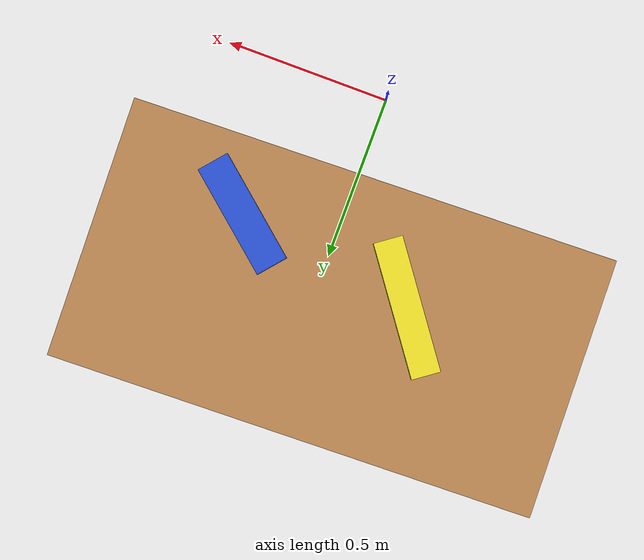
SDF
<sdf version="1.7">
 <world name="default">
  <light name="sun" type="directional">
   <pose>0 0 10 0 -0 0</pose>
   <diffuse>0.8 0.8 0.8 1</diffuse>
   <specular>0.2 0.2 0.2 1</specular>
   <attenuation>
    <range>1000</range>
    <constant>0.9</constant>
    <linear>0.01</linear>
    <quadratic>0.001</quadratic>
   </attenuation>
   <direction>-0.5 0.1 -0.9</direction>
   <spot><inner_angle>0</inner_angle><outer_angle>0</outer_angle><falloff>0</falloff></spot>
  </light>
  <light name="sun_1" type="directional">
   <pose>0 0 10 0 -0 0</pose>
   <diffuse>0.8 0.8 0.8 1</diffuse>
   <specular>0.2 0.2 0.2 1</specular>
   <attenuation>
    <range>1000</range>
    <constant>0.9</constant>
    <linear>0.01</linear>
    <quadratic>0.001</quadratic>
   </attenuation>
   <direction>-0.5 0.1 -0.9</direction>
   <spot><inner_angle>0</inner_angle><outer_angle>0</outer_angle><falloff>0</falloff></spot>
  </light>
  <light name="sun_2" type="directional">
   <pose>0 0 10 0 -0 0</pose>
   <diffuse>0.8 0.8 0.8 1</diffuse>
   <specular>0.2 0.2 0.2 1</specular>
   <attenuation>
    <range>1000</range>
    <constant>0.9</constant>
    <linear>0.01</linear>
    <quadratic>0.001</quadratic>
   </attenuation>
   <direction>-0.5 0.1 -0.9</direction>
   <spot><inner_angle>0</inner_angle><outer_angle>0</outer_angle><falloff>0</falloff></spot>
  </light>
  <model name="ground_plane">
   <static>1</static>
   <link name="link">
    <collision name="collision">
     <geometry><plane><normal>0 0 1</normal><size>100 100</size></plane></geometry>
     <surface>
      <contact><collide_bitmask>65535</collide_bitmask></contact>
      <friction><ode><mu>100</mu><mu2>50</mu2></ode></friction>
     </surface>
    </collision>
    <visual name="visual">
     <cast_shadows>0</cast_shadows>
     <geometry><plane><normal>0 0 1</normal><size>100 100</size></plane></geometry>
     <material>
      <script><uri>file://media/materials/scripts/gazebo.material</uri><name>Gazebo/Grey</name></script>
     </material>
    </visual>
   </link>
  </model>
  <gravity>0 0 -9.8</gravity>
  <magnetic_field>6e-06 2.3e-05 -4.2e-05</magnetic_field>
  <atmosphere type="adiabatic"/>
  <physics type="ode">
   <max_step_size>0.001</max_step_size>
   <real_time_factor>1</real_time_factor>
   <real_time_update_rate>1000</real_time_update_rate>
  </physics>
  <scene><ambient>0.4 0.4 0.4 1</ambient><background>0.7 0.7 0.7 1</background><shadows>1</shadows></scene>
  <spherical_coordinates>
   <surface_model>EARTH_WGS84</surface_model>
   <latitude_deg>0</latitude_deg>
   <longitude_deg>0</longitude_deg>
   <elevation>0</elevation>
   <heading_deg>0</heading_deg>
  </spherical_coordinates>
  <model name="table">
   <link name="link_3">
    <inertial>
     <mass>1</mass>
     <inertia><ixx>1</ixx><ixy>0</ixy><ixz>0</ixz><iyy>1</iyy><iyz>0</iyz><izz>1</izz></inertia>
    </inertial>
    <visual name="visual1">
     <pose>0 0 0.74 0 -0 0</pose>
     <geometry><box><size>1.5 0.8 0.03</size></box></geometry>
     <material>
      <script><uri>file://media/materials/scripts/gazebo.material</uri><name>Gazebo/Wood</name></script>
      <shader type="pixel"><normal_map>__default__</normal_map></shader>
      <ambient>1 1 1 1</ambient>
      <diffuse>1 1 1 1</diffuse>
      <specular>0.2 0.2 0.2 1</specular>
      <emissive>0 0 0 1</emissive>
     </material>
    </visual>
    <visual name="front_right_leg_visual">
     <pose>0.68 -0.38 0.5 0 -0 0</pose>
     <geometry><cylinder><radius>0.02</radius><length>0.5</length></cylinder></geometry>
     <material>
      <script><uri>file://media/materials/scripts/gazebo.material</uri><name>Gazebo/Grey</name></script>
      <shader type="pixel"><normal_map>__default__</normal_map></shader>
      <ambient>0.3 0.3 0.3 1</ambient>
      <diffuse>0.7 0.7 0.7 1</diffuse>
      <specular>0.01 0.01 0.01 1</specular>
      <emissive>0 0 0 1</emissive>
     </material>
    </visual>
    <visual name="back_right_leg_visual">
     <pose>-0.68 -0.38 0.5 0 -0 0</pose>
     <geometry><cylinder><radius>0.02</radius><length>0.5</length></cylinder></geometry>
     <material>
      <script><uri>file://media/materials/scripts/gazebo.material</uri><name>Gazebo/Grey</name></script>
      <shader type="pixel"><normal_map>__default__</normal_map></shader>
      <ambient>0.3 0.3 0.3 1</ambient>
      <diffuse>0.7 0.7 0.7 1</diffuse>
      <specular>0.01 0.01 0.01 1</specular>
      <emissive>0 0 0 1</emissive>
     </material>
    </visual>
    <visual name="back_left_leg_visual">
     <pose>-0.68 0.38 0.5 0 -0 0</pose>
     <geometry><cylinder><radius>0.02</radius><length>0.5</length></cylinder></geometry>
     <material>
      <script><uri>file://media/materials/scripts/gazebo.material</uri><name>Gazebo/Grey</name></script>
      <shader type="pixel"><normal_map>__default__</normal_map></shader>
      <ambient>0.3 0.3 0.3 1</ambient>
      <diffuse>0.7 0.7 0.7 1</diffuse>
      <specular>0.01 0.01 0.01 1</specular>
      <emissive>0 0 0 1</emissive>
     </material>
    </visual>
    <visual name="front_left_leg_visual">
     <pose>0.68 0.38 0.5 0 -0 0</pose>
     <geometry><cylinder><radius>0.02</radius><length>0.5</length></cylinder></geometry>
     <material>
      <script><uri>file://media/materials/scripts/gazebo.material</uri><name>Gazebo/Grey</name></script>
      <shader type="pixel"><normal_map>__default__</normal_map></shader>
      <ambient>0.3 0.3 0.3 1</ambient>
      <diffuse>0.7 0.7 0.7 1</diffuse>
      <specular>0.01 0.01 0.01 1</specular>
      <emissive>0 0 0 1</emissive>
     </material>
    </visual>
    <collision name="surface">
     <pose>0 0 0.74 0 -0 0</pose>
     <geometry><box><size>1.5 0.8 0.03</size></box></geometry>
     <surface>
      <friction>
       <ode><mu>0.6</mu><mu2>0.6</mu2><fdir1>0 0 0</fdir1><slip1>0</slip1><slip2>0</slip2></ode>
       <torsional>
        <coefficient>1</coefficient>
        <patch_radius>0</patch_radius>
        <surface_radius>0</surface_radius>
        <use_patch_radius>1</use_patch_radius>
        <ode><slip>0</slip></ode>
       </torsional>
      </friction>
      <bounce><restitution_coefficient>0</restitution_coefficient><threshold>1e+06</threshold></bounce>
      <contact>
       <collide_without_contact>0</collide_without_contact>
       <collide_without_contact_bitmask>1</collide_without_contact_bitmask>
       <collide_bitmask>1</collide_bitmask>
       <ode>
        <soft_cfm>0</soft_cfm>
        <soft_erp>0.2</soft_erp>
        <kp>1e+13</kp>
        <kd>1</kd>
        <max_vel>0.01</max_vel>
        <min_depth>0</min_depth>
       </ode>
       <bullet>
        <split_impulse>1</split_impulse>
        <split_impulse_penetration_threshold>-0.01</split_impulse_penetration_threshold>
        <soft_cfm>0</soft_cfm>
        <soft_erp>0.2</soft_erp>
        <kp>1e+13</kp>
        <kd>1</kd>
       </bullet>
      </contact>
     </surface>
    </collision>
    <collision name="back_left_leg_collision">
     <pose>-0.68 0.38 0.5 0 -0 0</pose>
     <geometry><cylinder><radius>0.02</radius><length>0.5</length></cylinder></geometry>
     <surface>
      <friction>
       <ode><mu>1</mu><mu2>1</mu2><fdir1>0 0 0</fdir1><slip1>0</slip1><slip2>0</slip2></ode>
       <torsional>
        <coefficient>1</coefficient>
        <patch_radius>0</patch_radius>
        <surface_radius>0</surface_radius>
        <use_patch_radius>1</use_patch_radius>
        <ode><slip>0</slip></ode>
       </torsional>
      </friction>
      <bounce><restitution_coefficient>0</restitution_coefficient><threshold>1e+06</threshold></bounce>
      <contact>
       <collide_without_contact>0</collide_without_contact>
       <collide_without_contact_bitmask>1</collide_without_contact_bitmask>
       <collide_bitmask>1</collide_bitmask>
       <ode>
        <soft_cfm>0</soft_cfm>
        <soft_erp>0.2</soft_erp>
        <kp>1e+13</kp>
        <kd>1</kd>
        <max_vel>0.01</max_vel>
        <min_depth>0</min_depth>
       </ode>
       <bullet>
        <split_impulse>1</split_impulse>
        <split_impulse_penetration_threshold>-0.01</split_impulse_penetration_threshold>
        <soft_cfm>0</soft_cfm>
        <soft_erp>0.2</soft_erp>
        <kp>1e+13</kp>
        <kd>1</kd>
       </bullet>
      </contact>
     </surface>
    </collision>
    <collision name="front_right_leg_collision">
     <pose>0.68 -0.38 0.5 0 -0 0</pose>
     <geometry><cylinder><radius>0.02</radius><length>0.5</length></cylinder></geometry>
     <surface>
      <friction>
       <ode><mu>1</mu><mu2>1</mu2><fdir1>0 0 0</fdir1><slip1>0</slip1><slip2>0</slip2></ode>
       <torsional>
        <coefficient>1</coefficient>
        <patch_radius>0</patch_radius>
        <surface_radius>0</surface_radius>
        <use_patch_radius>1</use_patch_radius>
        <ode><slip>0</slip></ode>
       </torsional>
      </friction>
      <bounce><restitution_coefficient>0</restitution_coefficient><threshold>1e+06</threshold></bounce>
      <contact>
       <collide_without_contact>0</collide_without_contact>
       <collide_without_contact_bitmask>1</collide_without_contact_bitmask>
       <collide_bitmask>1</collide_bitmask>
       <ode>
        <soft_cfm>0</soft_cfm>
        <soft_erp>0.2</soft_erp>
        <kp>1e+13</kp>
        <kd>1</kd>
        <max_vel>0.01</max_vel>
        <min_depth>0</min_depth>
       </ode>
       <bullet>
        <split_impulse>1</split_impulse>
        <split_impulse_penetration_threshold>-0.01</split_impulse_penetration_threshold>
        <soft_cfm>0</soft_cfm>
        <soft_erp>0.2</soft_erp>
        <kp>1e+13</kp>
        <kd>1</kd>
       </bullet>
      </contact>
     </surface>
    </collision>
    <collision name="back_right_leg_collision">
     <pose>-0.68 -0.38 0.5 0 -0 0</pose>
     <geometry><cylinder><radius>0.02</radius><length>0.5</length></cylinder></geometry>
     <surface>
      <friction>
       <ode><mu>1</mu><mu2>1</mu2><fdir1>0 0 0</fdir1><slip1>0</slip1><slip2>0</slip2></ode>
       <torsional>
        <coefficient>1</coefficient>
        <patch_radius>0</patch_radius>
        <surface_radius>0</surface_radius>
        <use_patch_radius>1</use_patch_radius>
        <ode><slip>0</slip></ode>
       </torsional>
      </friction>
      <bounce><restitution_coefficient>0</restitution_coefficient><threshold>1e+06</threshold></bounce>
      <contact>
       <collide_without_contact>0</collide_without_contact>
       <collide_without_contact_bitmask>1</collide_without_contact_bitmask>
       <collide_bitmask>1</collide_bitmask>
       <ode>
        <soft_cfm>0</soft_cfm>
        <soft_erp>0.2</soft_erp>
        <kp>1e+13</kp>
        <kd>1</kd>
        <max_vel>0.01</max_vel>
        <min_depth>0</min_depth>
       </ode>
       <bullet>
        <split_impulse>1</split_impulse>
        <split_impulse_penetration_threshold>-0.01</split_impulse_penetration_threshold>
        <soft_cfm>0</soft_cfm>
        <soft_erp>0.2</soft_erp>
        <kp>1e+13</kp>
        <kd>1</kd>
       </bullet>
      </contact>
     </surface>
    </collision>
    <collision name="front_left_leg_collision">
     <pose>0.68 0.38 0.5 0 -0 0</pose>
     <geometry><cylinder><radius>0.02</radius><length>0.5</length></cylinder></geometry>
     <surface>
      <friction>
       <ode><mu>1</mu><mu2>1</mu2><fdir1>0 0 0</fdir1><slip1>0</slip1><slip2>0</slip2></ode>
       <torsional>
        <coefficient>1</coefficient>
        <patch_radius>0</patch_radius>
        <surface_radius>0</surface_radius>
        <use_patch_radius>1</use_patch_radius>
        <ode><slip>0</slip></ode>
       </torsional>
      </friction>
      <bounce><restitution_coefficient>0</restitution_coefficient><threshold>1e+06</threshold></bounce>
      <contact>
       <collide_without_contact>0</collide_without_contact>
       <collide_without_contact_bitmask>1</collide_without_contact_bitmask>
       <collide_bitmask>1</collide_bitmask>
       <ode>
        <soft_cfm>0</soft_cfm>
        <soft_erp>0.2</soft_erp>
        <kp>1e+13</kp>
        <kd>1</kd>
        <max_vel>0.01</max_vel>
        <min_depth>0</min_depth>
       </ode>
       <bullet>
        <split_impulse>1</split_impulse>
        <split_impulse_penetration_threshold>-0.01</split_impulse_penetration_threshold>
        <soft_cfm>0</soft_cfm>
        <soft_erp>0.2</soft_erp>
        <kp>1e+13</kp>
        <kd>1</kd>
       </bullet>
      </contact>
     </surface>
    </collision>
   </link>
   <static>1</static>
   <pose>-0.063627 0.640676 -0.54679 0 -0 0.027241</pose>
  </model>
  <model name="unit_box_clone">
   <pose>0.276924 0.473874 0.265132 0 0 -2.27368</pose>
   <link name="link_1">
    <inertial>
     <mass>1</mass>
     <inertia>
      <ixx>0.166667</ixx>
      <ixy>0</ixy>
      <ixz>0</ixz>
      <iyy>0.166667</iyy>
      <iyz>0</iyz>
      <izz>0.166667</izz>
     </inertia>
    </inertial>
    <collision name="collision">
     <geometry><box><size>0.0988569 0.351172 0.0967844</size></box></geometry>
    </collision>
    <visual name="visual">
     <geometry><box><size>0.0988569 0.351172 0.0967844</size></box></geometry>
     <material>
      <script>
       <uri>model://dustbin/materials/scripts</uri>
       <uri>model://dustbin/materials/textures</uri>
       <name>dustbin/red_blue</name>
      </script>
     </material>
    </visual>
   </link>
  </model>
  <model name="unit_box_clone_clone">
   <pose>-0.268731 0.564167 0.265137 2e-06 -0 -2.51542</pose>
   <link name="link_1">
    <inertial>
     <mass>1</mass>
     <inertia>
      <ixx>0.166667</ixx>
      <ixy>0</ixy>
      <ixz>0</ixz>
      <iyy>0.166667</iyy>
      <iyz>0</iyz>
      <izz>0.166667</izz>
     </inertia>
    </inertial>
    <collision name="collision">
     <geometry><box><size>0.0885728 0.413144 0.113864</size></box></geometry>
    </collision>
    <visual name="visual">
     <geometry><box><size>0.0885728 0.413144 0.113864</size></box></geometry>
     <material>
      <script>
       <uri>model://dustbin/materials/scripts</uri>
       <uri>model://dustbin/materials/textures</uri>
       <name>dustbin/green_yellow</name>
      </script>
     </material>
    </visual>
   </link>
  </model>
 </world>
</sdf>
